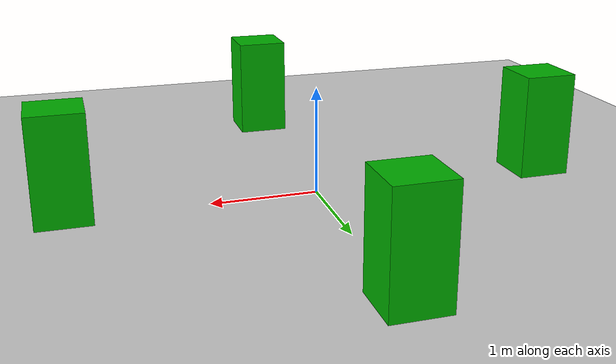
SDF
<sdf version="1.6">
 <world name="default">
  <light name="sun" type="directional">
   <pose>0 0 10 0 -0 0</pose>
   <diffuse>0.8 0.8 0.8 1</diffuse>
   <specular>0.2 0.2 0.2 1</specular>
   <attenuation>
    <range>1000</range>
    <constant>0.9</constant>
    <linear>0.01</linear>
    <quadratic>0.001</quadratic>
   </attenuation>
   <direction>-0.5 0.1 -0.9</direction>
  </light>
  <model name="ground_plane">
   <static>1</static>
   <link name="link">
    <collision name="collision">
     <geometry><plane><normal>0 0 1</normal><size>100 100</size></plane></geometry>
     <surface><friction><ode><mu>100</mu><mu2>50</mu2></ode></friction></surface>
    </collision>
    <visual name="visual">
     <cast_shadows>0</cast_shadows>
     <geometry><plane><normal>0 0 1</normal><size>100 100</size></plane></geometry>
     <material>
      <script><uri>file://media/materials/scripts/gazebo.material</uri><name>Gazebo/Grey</name></script>
     </material>
    </visual>
   </link>
  </model>
  <gravity>0 0 -9.8</gravity>
  <magnetic_field>6e-06 2.3e-05 -4.2e-05</magnetic_field>
  <atmosphere type="adiabatic"/>
  <physics name="default_physics" default="0" type="ode">
   <max_step_size>0.001</max_step_size>
   <real_time_factor>1</real_time_factor>
   <real_time_update_rate>1000</real_time_update_rate>
  </physics>
  <scene><ambient>0.4 0.4 0.4 1</ambient><background>0.7 0.7 0.7 1</background><shadows>1</shadows></scene>
  <audio><device>default</device></audio>
  <spherical_coordinates>
   <surface_model>EARTH_WGS84</surface_model>
   <latitude_deg>0</latitude_deg>
   <longitude_deg>0</longitude_deg>
   <elevation>0</elevation>
   <heading_deg>0</heading_deg>
  </spherical_coordinates>
  <model name="green_box">
   <link name="link_0">
    <inertial>
     <mass>0.248832</mass>
     <inertia>
      <ixx>0.0258912</ixx>
      <ixy>0</ixy>
      <ixz>0</ixz>
      <iyy>0.0259005</iyy>
      <iyz>0</iyz>
      <izz>0.0103197</izz>
     </inertia>
    </inertial>
    <visual name="visual">
     <geometry><box><size>0.499059 0.498611 1</size></box></geometry>
     <material>
      <lighting>1</lighting>
      <script><uri>file://media/materials/scripts/gazebo.material</uri><name>Gazebo/Grey</name></script>
      <shader type="vertex"><normal_map>__default__</normal_map></shader>
      <ambient>0 0.3 0 1</ambient>
      <diffuse>0 0.7 0 1</diffuse>
      <specular>0.01 0.01 0.01 1</specular>
      <emissive>0 0 0 1</emissive>
     </material>
    </visual>
    <collision name="collision">
     <geometry><box><size>0.499059 0.498611 1</size></box></geometry>
     <surface>
      <friction>
       <ode><mu>1</mu><mu2>1</mu2><fdir1>0 0 0</fdir1><slip1>0</slip1><slip2>0</slip2></ode>
       <torsional>
        <coefficient>1</coefficient>
        <patch_radius>0</patch_radius>
        <surface_radius>0</surface_radius>
        <use_patch_radius>1</use_patch_radius>
        <ode><slip>0</slip></ode>
       </torsional>
      </friction>
      <bounce><restitution_coefficient>0</restitution_coefficient><threshold>1e+06</threshold></bounce>
      <contact>
       <collide_without_contact>0</collide_without_contact>
       <collide_without_contact_bitmask>1</collide_without_contact_bitmask>
       <collide_bitmask>1</collide_bitmask>
       <ode>
        <soft_cfm>0</soft_cfm>
        <soft_erp>0.2</soft_erp>
        <kp>1e+13</kp>
        <kd>1</kd>
        <max_vel>0.01</max_vel>
        <min_depth>0</min_depth>
       </ode>
       <bullet>
        <split_impulse>1</split_impulse>
        <split_impulse_penetration_threshold>-0.01</split_impulse_penetration_threshold>
        <soft_cfm>0</soft_cfm>
        <soft_erp>0.2</soft_erp>
        <kp>1e+13</kp>
        <kd>1</kd>
       </bullet>
      </contact>
     </surface>
    </collision>
   </link>
   <static>0</static>
   <pose>-2.26751 -0.019324 0.499997 5e-06 -6e-06 -0.00019</pose>
  </model>
  <model name="green_box_clone">
   <link name="link_0">
    <inertial>
     <mass>0.248832</mass>
     <inertia>
      <ixx>0.0258912</ixx>
      <ixy>0</ixy>
      <ixz>0</ixz>
      <iyy>0.0259005</iyy>
      <iyz>0</iyz>
      <izz>0.0103197</izz>
     </inertia>
    </inertial>
    <visual name="visual">
     <geometry><box><size>0.499059 0.498611 1</size></box></geometry>
     <material>
      <lighting>1</lighting>
      <script><uri>file://media/materials/scripts/gazebo.material</uri><name>Gazebo/Grey</name></script>
      <shader type="vertex"><normal_map>__default__</normal_map></shader>
      <ambient>0 0.3 0 1</ambient>
      <diffuse>0 0.7 0 1</diffuse>
      <specular>0.01 0.01 0.01 1</specular>
      <emissive>0 0 0 1</emissive>
     </material>
    </visual>
    <collision name="collision">
     <geometry><box><size>0.499059 0.498611 1</size></box></geometry>
     <surface>
      <friction>
       <ode><mu>1</mu><mu2>1</mu2><fdir1>0 0 0</fdir1><slip1>0</slip1><slip2>0</slip2></ode>
       <torsional>
        <coefficient>1</coefficient>
        <patch_radius>0</patch_radius>
        <surface_radius>0</surface_radius>
        <use_patch_radius>1</use_patch_radius>
        <ode><slip>0</slip></ode>
       </torsional>
      </friction>
      <bounce><restitution_coefficient>0</restitution_coefficient><threshold>1e+06</threshold></bounce>
      <contact>
       <collide_without_contact>0</collide_without_contact>
       <collide_without_contact_bitmask>1</collide_without_contact_bitmask>
       <collide_bitmask>1</collide_bitmask>
       <ode>
        <soft_cfm>0</soft_cfm>
        <soft_erp>0.2</soft_erp>
        <kp>1e+13</kp>
        <kd>1</kd>
        <max_vel>0.01</max_vel>
        <min_depth>0</min_depth>
       </ode>
       <bullet>
        <split_impulse>1</split_impulse>
        <split_impulse_penetration_threshold>-0.01</split_impulse_penetration_threshold>
        <soft_cfm>0</soft_cfm>
        <soft_erp>0.2</soft_erp>
        <kp>1e+13</kp>
        <kd>1</kd>
       </bullet>
      </contact>
     </surface>
    </collision>
   </link>
   <static>0</static>
   <pose>0.005239 2.22184 0.500001 2e-06 1e-06 0.000201</pose>
  </model>
  <model name="green_box_clone_0">
   <link name="link_0">
    <inertial>
     <mass>0.248832</mass>
     <inertia>
      <ixx>0.0258912</ixx>
      <ixy>0</ixy>
      <ixz>0</ixz>
      <iyy>0.0259005</iyy>
      <iyz>0</iyz>
      <izz>0.0103197</izz>
     </inertia>
    </inertial>
    <visual name="visual">
     <geometry><box><size>0.499059 0.498611 1</size></box></geometry>
     <material>
      <lighting>1</lighting>
      <script><uri>file://media/materials/scripts/gazebo.material</uri><name>Gazebo/Grey</name></script>
      <shader type="vertex"><normal_map>__default__</normal_map></shader>
      <ambient>0 0.3 0 1</ambient>
      <diffuse>0 0.7 0 1</diffuse>
      <specular>0.01 0.01 0.01 1</specular>
      <emissive>0 0 0 1</emissive>
     </material>
    </visual>
    <collision name="collision">
     <geometry><box><size>0.499059 0.498611 1</size></box></geometry>
     <surface>
      <friction>
       <ode><mu>1</mu><mu2>1</mu2><fdir1>0 0 0</fdir1><slip1>0</slip1><slip2>0</slip2></ode>
       <torsional>
        <coefficient>1</coefficient>
        <patch_radius>0</patch_radius>
        <surface_radius>0</surface_radius>
        <use_patch_radius>1</use_patch_radius>
        <ode><slip>0</slip></ode>
       </torsional>
      </friction>
      <bounce><restitution_coefficient>0</restitution_coefficient><threshold>1e+06</threshold></bounce>
      <contact>
       <collide_without_contact>0</collide_without_contact>
       <collide_without_contact_bitmask>1</collide_without_contact_bitmask>
       <collide_bitmask>1</collide_bitmask>
       <ode>
        <soft_cfm>0</soft_cfm>
        <soft_erp>0.2</soft_erp>
        <kp>1e+13</kp>
        <kd>1</kd>
        <max_vel>0.01</max_vel>
        <min_depth>0</min_depth>
       </ode>
       <bullet>
        <split_impulse>1</split_impulse>
        <split_impulse_penetration_threshold>-0.01</split_impulse_penetration_threshold>
        <soft_cfm>0</soft_cfm>
        <soft_erp>0.2</soft_erp>
        <kp>1e+13</kp>
        <kd>1</kd>
       </bullet>
      </contact>
     </surface>
    </collision>
   </link>
   <static>0</static>
   <pose>2.27917 -0.056295 0.499997 -6e-06 -6e-06 7.6e-05</pose>
  </model>
  <model name="green_box_clone_1">
   <link name="link_0">
    <inertial>
     <mass>0.248832</mass>
     <inertia>
      <ixx>0.0258912</ixx>
      <ixy>0</ixy>
      <ixz>0</ixz>
      <iyy>0.0259005</iyy>
      <iyz>0</iyz>
      <izz>0.0103197</izz>
     </inertia>
    </inertial>
    <visual name="visual">
     <geometry><box><size>0.499059 0.498611 1</size></box></geometry>
     <material>
      <lighting>1</lighting>
      <script><uri>file://media/materials/scripts/gazebo.material</uri><name>Gazebo/Grey</name></script>
      <shader type="vertex"><normal_map>__default__</normal_map></shader>
      <ambient>0 0.3 0 1</ambient>
      <diffuse>0 0.7 0 1</diffuse>
      <specular>0.01 0.01 0.01 1</specular>
      <emissive>0 0 0 1</emissive>
     </material>
    </visual>
    <collision name="collision">
     <geometry><box><size>0.499059 0.498611 1</size></box></geometry>
     <surface>
      <friction>
       <ode><mu>1</mu><mu2>1</mu2><fdir1>0 0 0</fdir1><slip1>0</slip1><slip2>0</slip2></ode>
       <torsional>
        <coefficient>1</coefficient>
        <patch_radius>0</patch_radius>
        <surface_radius>0</surface_radius>
        <use_patch_radius>1</use_patch_radius>
        <ode><slip>0</slip></ode>
       </torsional>
      </friction>
      <bounce><restitution_coefficient>0</restitution_coefficient><threshold>1e+06</threshold></bounce>
      <contact>
       <collide_without_contact>0</collide_without_contact>
       <collide_without_contact_bitmask>1</collide_without_contact_bitmask>
       <collide_bitmask>1</collide_bitmask>
       <ode>
        <soft_cfm>0</soft_cfm>
        <soft_erp>0.2</soft_erp>
        <kp>1e+13</kp>
        <kd>1</kd>
        <max_vel>0.01</max_vel>
        <min_depth>0</min_depth>
       </ode>
       <bullet>
        <split_impulse>1</split_impulse>
        <split_impulse_penetration_threshold>-0.01</split_impulse_penetration_threshold>
        <soft_cfm>0</soft_cfm>
        <soft_erp>0.2</soft_erp>
        <kp>1e+13</kp>
        <kd>1</kd>
       </bullet>
      </contact>
     </surface>
    </collision>
   </link>
   <static>0</static>
   <pose>0.010791 -2.25015 0.5 -2e-06 1e-06 -0.000181</pose>
  </model>
 </world>
</sdf>
